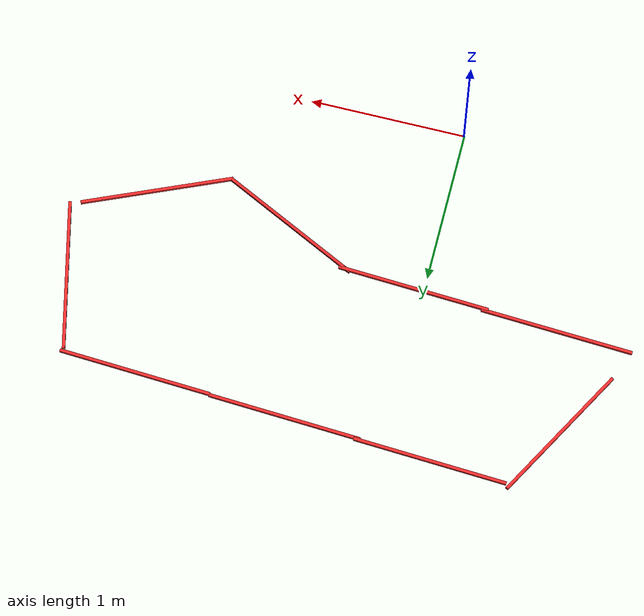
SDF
<?xml version='1.0'?>
<sdf version='1.5'>
  <model name='line_fallower_track'>
    <link name='link'>
      <inertial>
        <mass>1</mass>
        <inertia>
          <ixx>0.166667</ixx>
          <ixy>0</ixy>
          <ixz>0</ixz>
          <iyy>0.166667</iyy>
          <iyz>0</iyz>
          <izz>0.166667</izz>
        </inertia>
        <pose>0 0 0 0 -0 0</pose>
      </inertial>
      <self_collide>0</self_collide>
      <enable_wind>0</enable_wind>
      <kinematic>0</kinematic>
      <pose>-0.85352 0.968434 -0.466364 -0 -0 -1.62239</pose>
      <gravity>1</gravity>
      <visual name='visual'>
        <geometry>
          <box>
            <size>0.02 1 0.02</size>
          </box>
        </geometry>
        <material>
          <script>
            <name>Gazebo/Grey</name>
            <uri>file://media/materials/scripts/gazebo.material</uri>
          </script>
          <shader type='pixel'>
            <normal_map>__default__</normal_map>
          </shader>
          <ambient>0.8 0 0 1</ambient>
          <diffuse>0.937 0.161 0.161 1</diffuse>
          <specular>0.01 0.01 0.01 1</specular>
          <emissive>0 0 0 1</emissive>
        </material>
        <pose>0 0 0 0 -0 0</pose>
        <transparency>0</transparency>
        <cast_shadows>1</cast_shadows>
      </visual>
    </link>
    <link name='link_clone'>
      <inertial>
        <mass>1</mass>
        <inertia>
          <ixx>0.166667</ixx>
          <ixy>0</ixy>
          <ixz>0</ixz>
          <iyy>0.166667</iyy>
          <iyz>0</iyz>
          <izz>0.166667</izz>
        </inertia>
        <pose>0 0 0 0 -0 0</pose>
      </inertial>
      <self_collide>0</self_collide>
      <enable_wind>0</enable_wind>
      <kinematic>0</kinematic>
      <pose>0.099661 0.907143 -0.466355 -1e-06 1e-05 -1.62239</pose>
      <gravity>1</gravity>
      <visual name='visual'>
        <geometry>
          <box>
            <size>0.02 1 0.02</size>
          </box>
        </geometry>
        <material>
          <script>
            <name>Gazebo/Grey</name>
            <uri>file://media/materials/scripts/gazebo.material</uri>
          </script>
          <shader type='pixel'>
            <normal_map>__default__</normal_map>
          </shader>
          <ambient>0.8 0 0 1</ambient>
          <diffuse>0.937 0.161 0.161 1</diffuse>
          <specular>0.01 0.01 0.01 1</specular>
          <emissive>0 0 0 1</emissive>
        </material>
        <pose>0 0 0 0 -0 0</pose>
        <transparency>0</transparency>
        <cast_shadows>1</cast_shadows>
      </visual>
    </link>
    <link name='link_clone_0'>
      <inertial>
        <mass>1</mass>
        <inertia>
          <ixx>0.166667</ixx>
          <ixy>0</ixy>
          <ixz>0</ixz>
          <iyy>0.166667</iyy>
          <iyz>0</iyz>
          <izz>0.166667</izz>
        </inertia>
        <pose>0 0 0 0 -0 0</pose>
      </inertial>
      <self_collide>0</self_collide>
      <enable_wind>0</enable_wind>
      <kinematic>0</kinematic>
      <pose>0.970565 0.67847 -0.466357 -4e-06 9e-06 -2.02542</pose>
      <gravity>1</gravity>
      <visual name='visual'>
        <geometry>
          <box>
            <size>0.02 1 0.02</size>
          </box>
        </geometry>
        <material>
          <script>
            <name>Gazebo/Grey</name>
            <uri>file://media/materials/scripts/gazebo.material</uri>
          </script>
          <shader type='pixel'>
            <normal_map>__default__</normal_map>
          </shader>
          <ambient>0.8 0 0 1</ambient>
          <diffuse>0.937 0.161 0.161 1</diffuse>
          <specular>0.01 0.01 0.01 1</specular>
          <emissive>0 0 0 1</emissive>
        </material>
        <pose>0 0 0 0 -0 0</pose>
        <transparency>0</transparency>
        <cast_shadows>1</cast_shadows>
      </visual>
    </link>
    <link name='link_clone_1'>
      <inertial>
        <mass>1</mass>
        <inertia>
          <ixx>0.166667</ixx>
          <ixy>0</ixy>
          <ixz>0</ixz>
          <iyy>0.166667</iyy>
          <iyz>0</iyz>
          <izz>0.166667</izz>
        </inertia>
        <pose>0 0 0 0 -0 0</pose>
      </inertial>
      <self_collide>0</self_collide>
      <enable_wind>0</enable_wind>
      <kinematic>0</kinematic>
      <pose>1.87122 0.654087 -0.466358 4e-06 9e-06 -1.15513</pose>
      <gravity>1</gravity>
      <visual name='visual'>
        <geometry>
          <box>
            <size>0.02 1 0.02</size>
          </box>
        </geometry>
        <material>
          <script>
            <name>Gazebo/Grey</name>
            <uri>file://media/materials/scripts/gazebo.material</uri>
          </script>
          <shader type='pixel'>
            <normal_map>__default__</normal_map>
          </shader>
          <ambient>0.8 0 0 1</ambient>
          <diffuse>0.937 0.161 0.161 1</diffuse>
          <specular>0.01 0.01 0.01 1</specular>
          <emissive>0 0 0 1</emissive>
        </material>
        <pose>0 0 0 0 -0 0</pose>
        <transparency>0</transparency>
        <cast_shadows>1</cast_shadows>
      </visual>
    </link>
    <link name='link_clone_2'>
      <inertial>
        <mass>1</mass>
        <inertia>
          <ixx>0.166667</ixx>
          <ixy>0</ixy>
          <ixz>0</ixz>
          <iyy>0.166667</iyy>
          <iyz>0</iyz>
          <izz>0.166667</izz>
        </inertia>
        <pose>0 0 0 0 -0 0</pose>
      </inertial>
      <self_collide>0</self_collide>
      <enable_wind>0</enable_wind>
      <kinematic>0</kinematic>
      <pose>2.27772 1.36044 -0.466351 0.022498 0.006984 -2.90592</pose>
      <gravity>1</gravity>
      <visual name='visual'>
        <geometry>
          <box>
            <size>0.02 1 0.02</size>
          </box>
        </geometry>
        <material>
          <script>
            <name>Gazebo/Grey</name>
            <uri>file://media/materials/scripts/gazebo.material</uri>
          </script>
          <shader type='pixel'>
            <normal_map>__default__</normal_map>
          </shader>
          <ambient>0.8 0 0 1</ambient>
          <diffuse>0.937 0.161 0.161 1</diffuse>
          <specular>0.01 0.01 0.01 1</specular>
          <emissive>0 0 0 1</emissive>
        </material>
        <pose>0 0 0 0 -0 0</pose>
        <transparency>0</transparency>
        <cast_shadows>1</cast_shadows>
      </visual>
    </link>
    <link name='link_clone_3'>
      <inertial>
        <mass>1</mass>
        <inertia>
          <ixx>0.166667</ixx>
          <ixy>0</ixy>
          <ixz>0</ixz>
          <iyy>0.166667</iyy>
          <iyz>0</iyz>
          <izz>0.166667</izz>
        </inertia>
        <pose>0 0 0 0 -0 0</pose>
      </inertial>
      <self_collide>0</self_collide>
      <enable_wind>0</enable_wind>
      <kinematic>0</kinematic>
      <pose>1.67711 1.89456 -0.466345 -1e-06 1e-05 -1.62239</pose>
      <gravity>1</gravity>
      <visual name='visual'>
        <geometry>
          <box>
            <size>0.02 1 0.02</size>
          </box>
        </geometry>
        <material>
          <script>
            <name>Gazebo/Grey</name>
            <uri>file://media/materials/scripts/gazebo.material</uri>
          </script>
          <shader type='pixel'>
            <normal_map>__default__</normal_map>
          </shader>
          <ambient>0.8 0 0 1</ambient>
          <diffuse>0.937 0.161 0.161 1</diffuse>
          <specular>0.01 0.01 0.01 1</specular>
          <emissive>0 0 0 1</emissive>
        </material>
        <pose>0 0 0 0 -0 0</pose>
        <transparency>0</transparency>
        <cast_shadows>1</cast_shadows>
      </visual>
    </link>
    <link name='link_clone_4'>
      <inertial>
        <mass>1</mass>
        <inertia>
          <ixx>0.166667</ixx>
          <ixy>0</ixy>
          <ixz>0</ixz>
          <iyy>0.166667</iyy>
          <iyz>0</iyz>
          <izz>0.166667</izz>
        </inertia>
        <pose>0 0 0 0 -0 0</pose>
      </inertial>
      <self_collide>0</self_collide>
      <enable_wind>0</enable_wind>
      <kinematic>0</kinematic>
      <pose>0.681877 1.95227 -0.466345 -1e-06 1e-05 -1.62239</pose>
      <gravity>1</gravity>
      <visual name='visual'>
        <geometry>
          <box>
            <size>0.02 1 0.02</size>
          </box>
        </geometry>
        <material>
          <script>
            <name>Gazebo/Grey</name>
            <uri>file://media/materials/scripts/gazebo.material</uri>
          </script>
          <shader type='pixel'>
            <normal_map>__default__</normal_map>
          </shader>
          <ambient>0.8 0 0 1</ambient>
          <diffuse>0.937 0.161 0.161 1</diffuse>
          <specular>0.01 0.01 0.01 1</specular>
          <emissive>0 0 0 1</emissive>
        </material>
        <pose>0 0 0 0 -0 0</pose>
        <transparency>0</transparency>
        <cast_shadows>1</cast_shadows>
      </visual>
    </link>
    <link name='link_clone_5'>
      <inertial>
        <mass>1</mass>
        <inertia>
          <ixx>0.166667</ixx>
          <ixy>0</ixy>
          <ixz>0</ixz>
          <iyy>0.166667</iyy>
          <iyz>0</iyz>
          <izz>0.166667</izz>
        </inertia>
        <pose>0 0 0 0 -0 0</pose>
      </inertial>
      <self_collide>0</self_collide>
      <enable_wind>0</enable_wind>
      <kinematic>0</kinematic>
      <pose>-0.273679 2.00901 -0.466344 -1e-06 1e-05 -1.62239</pose>
      <gravity>1</gravity>
      <visual name='visual'>
        <geometry>
          <box>
            <size>0.02 1 0.02</size>
          </box>
        </geometry>
        <material>
          <script>
            <name>Gazebo/Grey</name>
            <uri>file://media/materials/scripts/gazebo.material</uri>
          </script>
          <shader type='pixel'>
            <normal_map>__default__</normal_map>
          </shader>
          <ambient>0.8 0 0 1</ambient>
          <diffuse>0.937 0.161 0.161 1</diffuse>
          <specular>0.01 0.01 0.01 1</specular>
          <emissive>0 0 0 1</emissive>
        </material>
        <pose>0 0 0 0 -0 0</pose>
        <transparency>0</transparency>
        <cast_shadows>1</cast_shadows>
      </visual>
    </link>
    <link name='link_clone_6'>
      <inertial>
        <mass>1</mass>
        <inertia>
          <ixx>0.166667</ixx>
          <ixy>0</ixy>
          <ixz>0</ixz>
          <iyy>0.166667</iyy>
          <iyz>0</iyz>
          <izz>0.166667</izz>
        </inertia>
        <pose>0 0 0 0 -0 0</pose>
      </inertial>
      <self_collide>0</self_collide>
      <enable_wind>0</enable_wind>
      <kinematic>0</kinematic>
      <pose>-1.02576 1.62953 -0.466348 9e-06 5e-06 -0.506377</pose>
      <gravity>1</gravity>
      <visual name='visual'>
        <geometry>
          <box>
            <size>0.02 1 0.02</size>
          </box>
        </geometry>
        <material>
          <script>
            <name>Gazebo/Grey</name>
            <uri>file://media/materials/scripts/gazebo.material</uri>
          </script>
          <shader type='pixel'>
            <normal_map>__default__</normal_map>
          </shader>
          <ambient>0.8 0 0 1</ambient>
          <diffuse>0.937 0.161 0.161 1</diffuse>
          <specular>0.01 0.01 0.01 1</specular>
          <emissive>0 0 0 1</emissive>
        </material>
        <pose>0 0 0 0 -0 0</pose>
        <transparency>0</transparency>
        <cast_shadows>1</cast_shadows>
      </visual>
    </link>
    <static>0</static>
    <allow_auto_disable>1</allow_auto_disable>
  </model>
</sdf>
